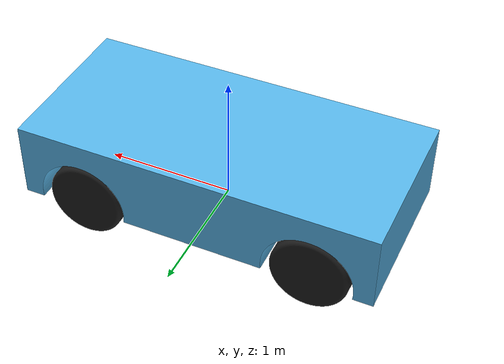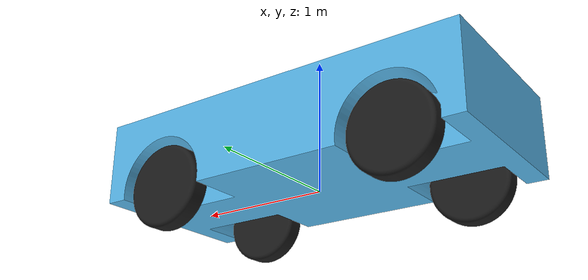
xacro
<?xml version="1.0"?>
<robot name="omni_robot" xmlns:xacro="http://ros.org/wiki/xacro">

  <xacro:include filename="$(find robot_description)/robot/parts/base/base.xacro"/>
  <xacro:include filename="$(find robot_description)/robot/parts/wheel/wheel.xacro"/>
  <xacro:include filename="$(find robot_description)/robot/parts/knuckle/knuckle.xacro"/>
  <xacro:include filename="$(find robot_description)/robot/robot_control_gazebo.xacro"/>
  <xacro:property name="PI" value="3.14159274"/>

  <xacro:arg name="robot_name" default="robot_1"/>

  <!-- =============== Link & Joint =============== -->
  <!-- Base -->
  <link name="$(arg robot_name)_base_footprint"/>
  <xacro:base robot_name="$(arg robot_name)" parent="$(arg robot_name)_base_footprint">
    <origin xyz="0 0 0" rpy="0 0 0" />
  </xacro:base>

  <!-- Suspension -->
  <!-- Front Right Sus -->
  <xacro:knuckle prefix="$(arg robot_name)_front_right" parent="$(arg robot_name)_base_link">
	<origin xyz="0.9 -0.55 0.05" rpy="0 0 ${PI}"/>
	<axis xyz="0 0 1"/>
  </xacro:knuckle>
  <!-- Front Left Sus -->
  <xacro:knuckle prefix="$(arg robot_name)_front_left" parent="$(arg robot_name)_base_link">
	<origin xyz="0.9 0.55 0.05" rpy="0 0 0"/>
	<axis xyz="0 0 1"/>
  </xacro:knuckle>

  <!-- Wheels -->
  <xacro:wheel prefix="$(arg robot_name)_fr" parent="$(arg robot_name)_front_right_knuckle_link">
	  <origin xyz="0.0 0.0 0.0" rpy="0 0 0"/>
	  <axis xyz="0 -1 0"/>
  </xacro:wheel>

  <xacro:wheel prefix="$(arg robot_name)_fl" parent="$(arg robot_name)_front_left_knuckle_link">
	<origin xyz="0.0 0.0 0.0" rpy="0 0 0"/>
	<axis xyz="0 1 0"/>
  </xacro:wheel>

  <xacro:wheel prefix="$(arg robot_name)_rl" parent="$(arg robot_name)_base_link">
	<origin xyz="-0.9 0.55 0.05" rpy="0 0 0"/>
	<axis xyz="0 1 0"/>
  </xacro:wheel>

  <xacro:wheel prefix="$(arg robot_name)_rr" parent="$(arg robot_name)_base_link">
	<origin xyz="-0.9 -0.55 0.05" rpy="0 0 ${PI}"/>
	<axis xyz="0 -1 0"/>
  </xacro:wheel>

  <!-- =============== Gazebo =============== -->
  <!-- Controllers -->
  <xacro:robot_gazebo_systems robot_name="$(arg robot_name)"/>

  <!-- Base -->
  <xacro:base_gazebo_v0 robot_name="$(arg robot_name)"/>

  <!-- Wheels -->
  <xacro:wheel_gazebo_v0 prefix="$(arg robot_name)_fr"/>
  <xacro:wheel_gazebo_v0 prefix="$(arg robot_name)_fl"/>
  <xacro:wheel_gazebo_v0 prefix="$(arg robot_name)_rl"/>
  <xacro:wheel_gazebo_v0 prefix="$(arg robot_name)_rr"/>

</robot>

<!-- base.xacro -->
<robot xmlns:xacro="http://ros.org/wiki/xacro">

  <xacro:include filename="$(find robot_description)/robot/parts/base/base.gazebo"/>

  <xacro:macro name="base" params="parent robot_name *joint_origin">
	  <joint name="${robot_name}_base_link_joint" type="fixed">
	    <xacro:insert_block name="joint_origin"/>
	    <parent link="${parent}"/>
	    <child link="${robot_name}_base_link"/>
	  </joint>

	<link name="${robot_name}_base_link">
	  <visual>
		  <geometry>
		    <mesh filename="package://robot_description/meshes/DAE/base/base_link_${robot_name}.dae"/>
		  </geometry>
	  </visual>
	  <collision>
		  <geometry>
		    <mesh filename="package://robot_description/meshes/STL/base/base_link.stl"/>
		  </geometry>
	  </collision>
	  <inertial>
		  <origin xyz="0 0 0.32"/>
		  <mass value="27"/>
		<inertia ixx="2.2" ixy="0" ixz="0" iyy="9.2" iyz="0" izz="10.6" />
	  </inertial>
          <surface>
            <friction>
              <ode>
                <mu>0.8</mu>
                <mu2>0.8</mu2>
                <kp>1e15</kp>
                <kd>1e13</kd>
              </ode>
            </friction>
            <bounce>
              <restitution_coefficient>0.01</restitution_coefficient>
              <threshold>10</threshold>
            </bounce>
            <contact>
              <ode>
                <max_vel>0.01</max_vel>
                <minDepth>0</minDepth>
                <contact_surface_layer>0</contact_surface_layer>
              </ode>
            </contact>
          </surface>
	</link>
  </xacro:macro>

</robot>

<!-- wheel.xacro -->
<robot xmlns:xacro="http://ros.org/wiki/xacro">

  <xacro:include filename="$(find robot_description)/robot/parts/wheel/wheel.gazebo"/>

  <xacro:macro name="wheel" params="prefix parent *joint_origin *joint_axis">
	<joint name="${prefix}_wheel_joint" type="continuous">
	  <xacro:insert_block name="joint_origin"/>
	  <parent link="${parent}"/>
	  <child link="${prefix}_wheel_link"/>
          <limit effort="100" velocity="100"/>
	  <xacro:insert_block name="joint_axis"/>
	</joint>

	<link name="${prefix}_wheel_link">
	  <visual>
		  <geometry>
		    <mesh filename="package://robot_description/meshes/DAE/wheel/wheel.dae"/>
		  </geometry>
	  </visual>
	  <collision>
		  <geometry>
		    <mesh filename="package://robot_description/meshes/STL/wheel/wheel.stl"/>
		  </geometry>
	  </collision>
	  <inertial>
		<origin xyz="0.0 0.0 0.0"/>
		<mass value="1.0"/>
		<inertia ixx="0.222" ixy="0" ixz="0" iyy="0.395" iyz="0" izz="0.222"/>
	  </inertial>
          <surface>
            <friction>
              <ode>
                <mu1>1.2</mu1>
                <mu2>1.2</mu2>
                <kp>1e15</kp>
                <kd>1e13</kd>
              </ode>
            </friction>
            <bounce>
              <restitution_coefficient>0.01</restitution_coefficient>
              <threshold>0</threshold>
            </bounce>
            <contact>
              <ode>
                <max_vel>10</max_vel>
              </ode>
            </contact>
          </surface>
	</link>
  </xacro:macro>

</robot>

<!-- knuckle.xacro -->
<robot xmlns:xacro="http://ros.org/wiki/xacro">

  <xacro:include filename="$(find robot_description)/robot/parts/knuckle/knuckle.gazebo"/>

  <xacro:macro name="knuckle" params="prefix parent *joint_origin *joint_axis">
	<joint name="${prefix}_knuckle_joint" type="revolute">
	  <xacro:insert_block name="joint_origin"/>
	  <parent link="${parent}"/>
	  <child link="${prefix}_knuckle_link"/>
          <limit effort="200" velocity="3" lower="-1.51" upper = "1.51"/>
          <dynamics damping="0.005" friction="0.1"/>
	  <xacro:insert_block name="joint_axis"/>
	</joint>

	<link name="${prefix}_knuckle_link">
	  <visual>
		  <geometry>
		    <mesh filename="package://robot_description/meshes/STL/knuckle/knuckle.stl"/>
		  </geometry>
	  </visual>

	  <collision>
		  <geometry>
		    <mesh filename="package://robot_description/meshes/STL/knuckle/knuckle.stl"/>
		  </geometry>
	  </collision>

    <inertial>
		<origin xyz="0.0 -0.011 -0.0"/>
		<mass value="0.25"/>
		<inertia ixx="0.00031" ixy="0" ixz="0" iyy="0.0005" iyz="0" izz="0.00031"/>
	  </inertial>
          <surface>
            <friction>
              <ode>
                <mu1>1.2</mu1>
                <mu2>1.2</mu2>
                <kp>1e15</kp>
                <kd>1e13</kd>
              </ode>
            </friction>
            <bounce>
              <restitution_coefficient>0.01</restitution_coefficient>
              <threshold>0</threshold>
            </bounce>
            <contact>
              <ode>
                <max_vel>10</max_vel>
              </ode>
            </contact>
          </surface>
	</link>
  </xacro:macro>

</robot>
